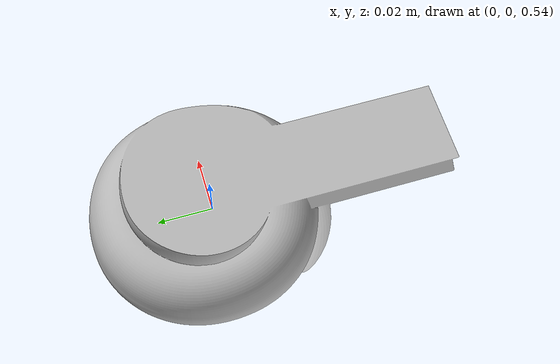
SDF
<?xml version='1.0'?>
<sdf version='1.6'>
<model name ='poop_middle'>
  <pose>0 0 0.5 0 0 0</pose>
    <link name='middle_link'>
      <inertial>
        <mass>0.08</mass>
        <inertia>
          <ixx>147.491791</ixx>
          <ixy>-4.949071</ixy>
          <ixz>-0.258245</ixz>
          <iyy>10.094223</iyy>
          <iyz>-0.634677</iyz>
          <izz>153.751083</izz>
        </inertia>
      </inertial>
      <collision name='middle_colision'>
        <geometry>
          <mesh>
            <uri>model://poop_middle/poop2.dae</uri>
          </mesh>
        </geometry>
      </collision>
      <visual name='middle_visual'>
        <geometry>
          <mesh>
            <uri>model://poop_middle/poop2.dae</uri>
          </mesh>
        </geometry>
      </visual>
    </link>
  </model>
</sdf>
